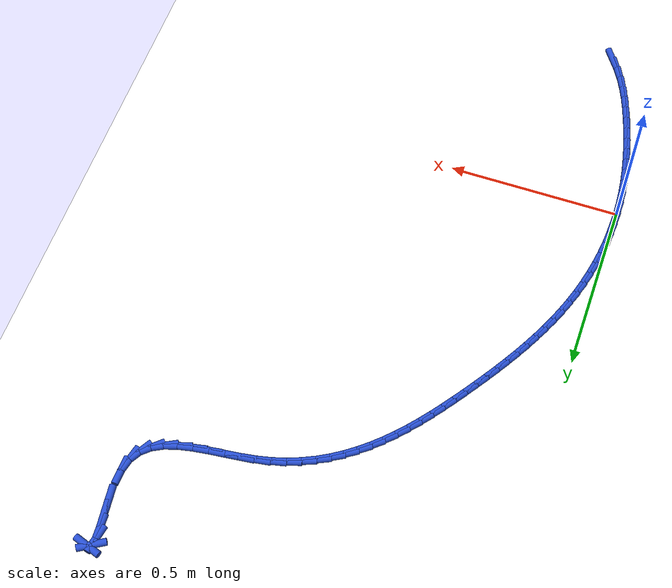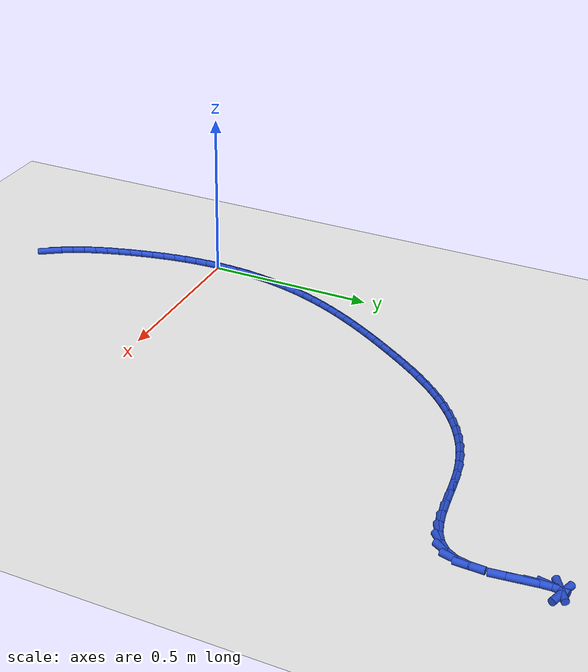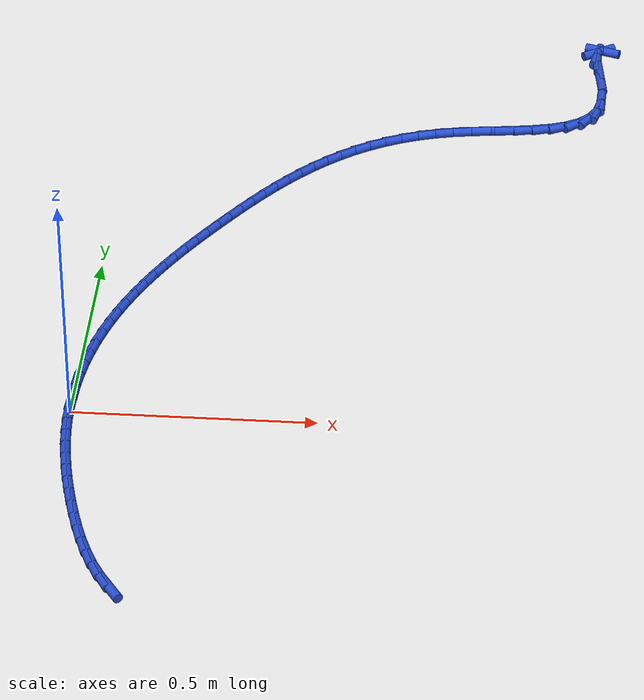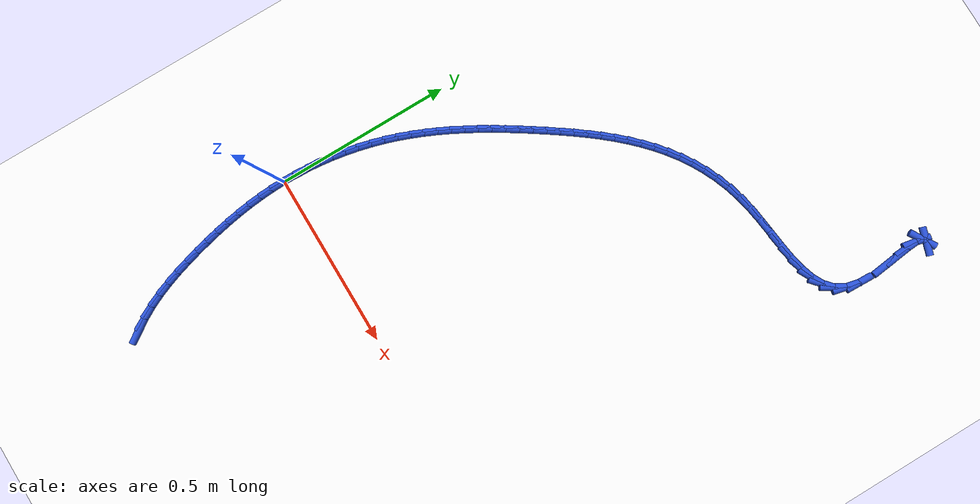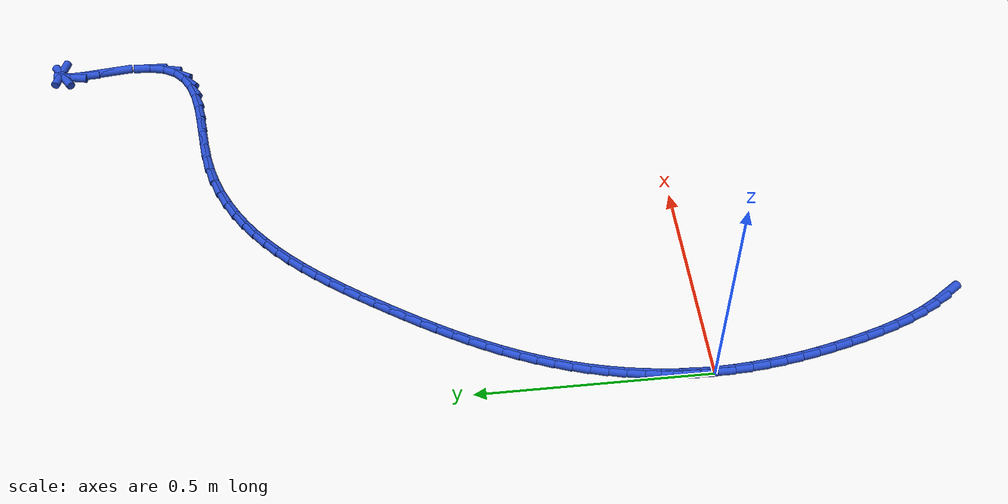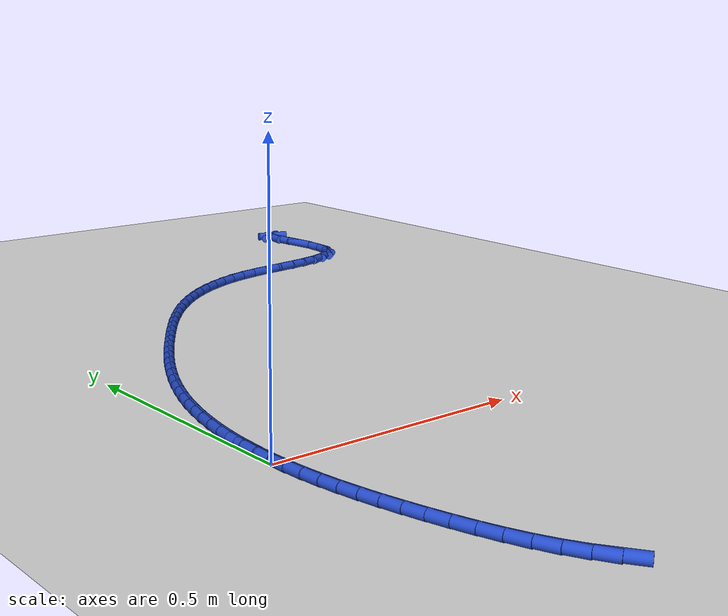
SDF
<sdf version="1.6">
 <world name="default">
  <model name="ground_plane">
   <static>1</static>
   <link name="link">
    <collision name="collision">
     <geometry><plane><normal>0 0 1</normal><size>100 100</size></plane></geometry>
     <surface><friction><ode><mu>100</mu><mu2>50</mu2></ode></friction></surface>
    </collision>
    <visual name="visual">
     <cast_shadows>0</cast_shadows>
     <geometry><plane><normal>0 0 1</normal><size>100 100</size></plane></geometry>
     <material>
      <script><uri>file://media/materials/scripts/gazebo.material</uri><name>Gazebo/WhiteGlow</name></script>
     </material>
    </visual>
   </link>
  </model>
  <model name="line">
   <link name="link_0">
    <pose>-1.734723475976807e-18 6.245004513516506e-17 0.01 0 1.57 1.5594142094917165</pose>
    <collision name="collision">
     <geometry><cylinder><radius>0.01</radius><length>0.08</length></cylinder></geometry>
    </collision>
    <visual name="visual">
     <material>
      <script><name>Gazebo/Blue</name><uri>file://media/materials/scripts/gazebo.material</uri></script>
     </material>
     <geometry><cylinder><radius>0.01</radius><length>0.08</length></cylinder></geometry>
    </visual>
   </link>
   <link name="link_1">
    <pose>0.00041959633002896753 0.03686293145337743 0.01 0 1.57 1.5197614206529997</pose>
    <collision name="collision">
     <geometry><cylinder><radius>0.01</radius><length>0.08</length></cylinder></geometry>
    </collision>
    <visual name="visual">
     <material>
      <script><name>Gazebo/Blue</name><uri>file://media/materials/scripts/gazebo.material</uri></script>
     </material>
     <geometry><cylinder><radius>0.01</radius><length>0.08</length></cylinder></geometry>
    </visual>
   </link>
   <link name="link_2">
    <pose>0.0023075632535122246 0.07382444804384612 0.01 0 1.57 1.4806341923794002</pose>
    <collision name="collision">
     <geometry><cylinder><radius>0.01</radius><length>0.08</length></cylinder></geometry>
    </collision>
    <visual name="visual">
     <material>
      <script><name>Gazebo/Blue</name><uri>file://media/materials/scripts/gazebo.material</uri></script>
     </material>
     <geometry><cylinder><radius>0.01</radius><length>0.08</length></cylinder></geometry>
    </visual>
   </link>
   <link name="link_3">
    <pose>0.005649455353335342 0.11078931762957243 0.01 0 1.57 1.4418444868212625</pose>
    <collision name="collision">
     <geometry><cylinder><radius>0.01</radius><length>0.08</length></cylinder></geometry>
    </collision>
    <visual name="visual">
     <material>
      <script><name>Gazebo/Blue</name><uri>file://media/materials/scripts/gazebo.material</uri></script>
     </material>
     <geometry><cylinder><radius>0.01</radius><length>0.08</length></cylinder></geometry>
    </visual>
   </link>
   <link name="link_4">
    <pose>0.010430827212383897 0.14766230806872271 0.01 0 1.57 1.40320618219238</pose>
    <collision name="collision">
     <geometry><cylinder><radius>0.01</radius><length>0.08</length></cylinder></geometry>
    </collision>
    <visual name="visual">
     <material>
      <script><name>Gazebo/Blue</name><uri>file://media/materials/scripts/gazebo.material</uri></script>
     </material>
     <geometry><cylinder><radius>0.01</radius><length>0.08</length></cylinder></geometry>
    </visual>
   </link>
   <link name="link_5">
    <pose>0.016637233413543475 0.18434818721946336 0.01 0 1.57 1.3645342668743343</pose>
    <collision name="collision">
     <geometry><cylinder><radius>0.01</radius><length>0.08</length></cylinder></geometry>
    </collision>
    <visual name="visual">
     <material>
      <script><name>Gazebo/Blue</name><uri>file://media/materials/scripts/gazebo.material</uri></script>
     </material>
     <geometry><cylinder><radius>0.01</radius><length>0.08</length></cylinder></geometry>
    </visual>
   </link>
   <link name="link_6">
    <pose>0.02425422853969965 0.2207517229399607 0.01 0 1.57 1.3256439769377975</pose>
    <collision name="collision">
     <geometry><cylinder><radius>0.01</radius><length>0.08</length></cylinder></geometry>
    </collision>
    <visual name="visual">
     <material>
      <script><name>Gazebo/Blue</name><uri>file://media/materials/scripts/gazebo.material</uri></script>
     </material>
     <geometry><cylinder><radius>0.01</radius><length>0.08</length></cylinder></geometry>
    </visual>
   </link>
   <link name="link_7">
    <pose>0.033267367173738 0.25677768308838117 0.01 0 1.57 1.2863499621935641</pose>
    <collision name="collision">
     <geometry><cylinder><radius>0.01</radius><length>0.08</length></cylinder></geometry>
    </collision>
    <visual name="visual">
     <material>
      <script><name>Gazebo/Blue</name><uri>file://media/materials/scripts/gazebo.material</uri></script>
     </material>
     <geometry><cylinder><radius>0.01</radius><length>0.08</length></cylinder></geometry>
    </visual>
   </link>
   <link name="link_8">
    <pose>0.04366220389854408 0.29233083552289085 0.01 0 1.57 1.2468676575764424</pose>
    <collision name="collision">
     <geometry><cylinder><radius>0.01</radius><length>0.08</length></cylinder></geometry>
    </collision>
    <visual name="visual">
     <material>
      <script><name>Gazebo/Blue</name><uri>file://media/materials/scripts/gazebo.material</uri></script>
     </material>
     <geometry><cylinder><radius>0.01</radius><length>0.08</length></cylinder></geometry>
    </visual>
   </link>
   <link name="link_9">
    <pose>0.055414555991797405 0.327333573481135 0.01 0 1.57 1.2091093961100625</pose>
    <collision name="collision">
     <geometry><cylinder><radius>0.01</radius><length>0.08</length></cylinder></geometry>
    </collision>
    <visual name="visual">
     <material>
      <script><name>Gazebo/Blue</name><uri>file://media/materials/scripts/gazebo.material</uri></script>
     </material>
     <geometry><cylinder><radius>0.01</radius><length>0.08</length></cylinder></geometry>
    </visual>
   </link>
   <link name="link_10">
    <pose>0.06845234348073441 0.36179498843986807 0.01 0 1.57 1.1737942052509123</pose>
    <collision name="collision">
     <geometry><cylinder><radius>0.01</radius><length>0.08</length></cylinder></geometry>
    </collision>
    <visual name="visual">
     <material>
      <script><name>Gazebo/Blue</name><uri>file://media/materials/scripts/gazebo.material</uri></script>
     </material>
     <geometry><cylinder><radius>0.01</radius><length>0.08</length></cylinder></geometry>
    </visual>
   </link>
   <link name="link_11">
    <pose>0.0826887837965743 0.3957507848687246 0.01 0 1.57 1.1410190597035177</pose>
    <collision name="collision">
     <geometry><cylinder><radius>0.01</radius><length>0.08</length></cylinder></geometry>
    </collision>
    <visual name="visual">
     <material>
      <script><name>Gazebo/Blue</name><uri>file://media/materials/scripts/gazebo.material</uri></script>
     </material>
     <geometry><cylinder><radius>0.01</radius><length>0.08</length></cylinder></geometry>
    </visual>
   </link>
   <link name="link_12">
    <pose>0.0980370904534148 0.42923667432767404 0.01 0 1.57 1.110845754170046</pose>
    <collision name="collision">
     <geometry><cylinder><radius>0.01</radius><length>0.08</length></cylinder></geometry>
    </collision>
    <visual name="visual">
     <material>
      <script><name>Gazebo/Blue</name><uri>file://media/materials/scripts/gazebo.material</uri></script>
     </material>
     <geometry><cylinder><radius>0.01</radius><length>0.08</length></cylinder></geometry>
    </visual>
   </link>
   <link name="link_13">
    <pose>0.11441047696535372 0.4622883683766858 0.01 0 1.57 1.083306772269377</pose>
    <collision name="collision">
     <geometry><cylinder><radius>0.01</radius><length>0.08</length></cylinder></geometry>
    </collision>
    <visual name="visual">
     <material>
      <script><name>Gazebo/Blue</name><uri>file://media/materials/scripts/gazebo.material</uri></script>
     </material>
     <geometry><cylinder><radius>0.01</radius><length>0.08</length></cylinder></geometry>
    </visual>
   </link>
   <link name="link_14">
    <pose>0.13172215684648883 0.4949415785757296 0.01 0 1.57 1.0584112083198152</pose>
    <collision name="collision">
     <geometry><cylinder><radius>0.01</radius><length>0.08</length></cylinder></geometry>
    </collision>
    <visual name="visual">
     <material>
      <script><name>Gazebo/Blue</name><uri>file://media/materials/scripts/gazebo.material</uri></script>
     </material>
     <geometry><cylinder><radius>0.01</radius><length>0.08</length></cylinder></geometry>
    </visual>
   </link>
   <link name="link_15">
    <pose>0.14988534361091774 0.5272320164847746 0.01 0 1.57 1.0361505030005373</pose>
    <collision name="collision">
     <geometry><cylinder><radius>0.01</radius><length>0.08</length></cylinder></geometry>
    </collision>
    <visual name="visual">
     <material>
      <script><name>Gazebo/Blue</name><uri>file://media/materials/scripts/gazebo.material</uri></script>
     </material>
     <geometry><cylinder><radius>0.01</radius><length>0.08</length></cylinder></geometry>
    </visual>
   </link>
   <link name="link_16">
    <pose>0.1688132507727383 0.5591953936637903 0.01 0 1.57 1.0165037237975427</pose>
    <collision name="collision">
     <geometry><cylinder><radius>0.01</radius><length>0.08</length></cylinder></geometry>
    </collision>
    <visual name="visual">
     <material>
      <script><name>Gazebo/Blue</name><uri>file://media/materials/scripts/gazebo.material</uri></script>
     </material>
     <geometry><cylinder><radius>0.01</radius><length>0.08</length></cylinder></geometry>
    </visual>
   </link>
   <link name="link_17">
    <pose>0.18841909184604821 0.5908674216727464 0.01 0 1.57 0.9994422360289478</pose>
    <collision name="collision">
     <geometry><cylinder><radius>0.01</radius><length>0.08</length></cylinder></geometry>
    </collision>
    <visual name="visual">
     <material>
      <script><name>Gazebo/Blue</name><uri>file://media/materials/scripts/gazebo.material</uri></script>
     </material>
     <geometry><cylinder><radius>0.01</radius><length>0.08</length></cylinder></geometry>
    </visual>
   </link>
   <link name="link_18">
    <pose>0.2086160803449452 0.6222838120716119 0.01 0 1.57 0.9849337000167219</pose>
    <collision name="collision">
     <geometry><cylinder><radius>0.01</radius><length>0.08</length></cylinder></geometry>
    </collision>
    <visual name="visual">
     <material>
      <script><name>Gazebo/Blue</name><uri>file://media/materials/scripts/gazebo.material</uri></script>
     </material>
     <geometry><cylinder><radius>0.01</radius><length>0.08</length></cylinder></geometry>
    </visual>
   </link>
   <link name="link_19">
    <pose>0.229317429783527 0.6534802764203566 0.01 0 1.57 0.9729401917821159</pose>
    <collision name="collision">
     <geometry><cylinder><radius>0.01</radius><length>0.08</length></cylinder></geometry>
    </collision>
    <visual name="visual">
     <material>
      <script><name>Gazebo/Blue</name><uri>file://media/materials/scripts/gazebo.material</uri></script>
     </material>
     <geometry><cylinder><radius>0.01</radius><length>0.08</length></cylinder></geometry>
    </visual>
   </link>
   <link name="link_20">
    <pose>0.2504364964700212 0.6844923892473219 0.01 0 1.57 0.961520134958428</pose>
    <collision name="collision">
     <geometry><cylinder><radius>0.01</radius><length>0.08</length></cylinder></geometry>
    </collision>
    <visual name="visual">
     <material>
      <script><name>Gazebo/Blue</name><uri>file://media/materials/scripts/gazebo.material</uri></script>
     </material>
     <geometry><cylinder><radius>0.01</radius><length>0.08</length></cylinder></geometry>
    </visual>
   </link>
   <link name="link_21">
    <pose>0.2719390974156577 0.7153053814459571 0.01 0 1.57 0.9458832486209974</pose>
    <collision name="collision">
     <geometry><cylinder><radius>0.01</radius><length>0.08</length></cylinder></geometry>
    </collision>
    <visual name="visual">
     <material>
      <script><name>Gazebo/Blue</name><uri>file://media/materials/scripts/gazebo.material</uri></script>
     </material>
     <geometry><cylinder><radius>0.01</radius><length>0.08</length></cylinder></geometry>
    </visual>
   </link>
   <link name="link_22">
    <pose>0.2939215157018397 0.7457792828386856 0.01 0 1.57 0.9252342550421012</pose>
    <collision name="collision">
     <geometry><cylinder><radius>0.01</radius><length>0.08</length></cylinder></geometry>
    </collision>
    <visual name="visual">
     <material>
      <script><name>Gazebo/Blue</name><uri>file://media/materials/scripts/gazebo.material</uri></script>
     </material>
     <geometry><cylinder><radius>0.01</radius><length>0.08</length></cylinder></geometry>
    </visual>
   </link>
   <link name="link_23">
    <pose>0.31649997388245926 0.7757549884391035 0.01 0 1.57 0.8994755979723202</pose>
    <collision name="collision">
     <geometry><cylinder><radius>0.01</radius><length>0.08</length></cylinder></geometry>
    </collision>
    <visual name="visual">
     <material>
      <script><name>Gazebo/Blue</name><uri>file://media/materials/scripts/gazebo.material</uri></script>
     </material>
     <geometry><cylinder><radius>0.01</radius><length>0.08</length></cylinder></geometry>
    </visual>
   </link>
   <link name="link_24">
    <pose>0.3397906945114086 0.8050733932608068 0.01 0 1.57 0.8684958564985839</pose>
    <collision name="collision">
     <geometry><cylinder><radius>0.01</radius><length>0.08</length></cylinder></geometry>
    </collision>
    <visual name="visual">
     <material>
      <script><name>Gazebo/Blue</name><uri>file://media/materials/scripts/gazebo.material</uri></script>
     </material>
     <geometry><cylinder><radius>0.01</radius><length>0.08</length></cylinder></geometry>
    </visual>
   </link>
   <link name="link_25">
    <pose>0.36390990014257946 0.8335753923173913 0.01 0 1.57 0.8321895468190854</pose>
    <collision name="collision">
     <geometry><cylinder><radius>0.01</radius><length>0.08</length></cylinder></geometry>
    </collision>
    <visual name="visual">
     <material>
      <script><name>Gazebo/Blue</name><uri>file://media/materials/scripts/gazebo.material</uri></script>
     </material>
     <geometry><cylinder><radius>0.01</radius><length>0.08</length></cylinder></geometry>
    </visual>
   </link>
   <link name="link_26">
    <pose>0.3889738133298642 0.8611018806224535 0.01 0 1.57 0.7904827724453364</pose>
    <collision name="collision">
     <geometry><cylinder><radius>0.01</radius><length>0.08</length></cylinder></geometry>
    </collision>
    <visual name="visual">
     <material>
      <script><name>Gazebo/Blue</name><uri>file://media/materials/scripts/gazebo.material</uri></script>
     </material>
     <geometry><cylinder><radius>0.01</radius><length>0.08</length></cylinder></geometry>
    </visual>
   </link>
   <link name="link_27">
    <pose>0.41509865662715445 0.8874937531895888 0.01 0 1.57 0.7433649602911423</pose>
    <collision name="collision">
     <geometry><cylinder><radius>0.01</radius><length>0.08</length></cylinder></geometry>
    </collision>
    <visual name="visual">
     <material>
      <script><name>Gazebo/Blue</name><uri>file://media/materials/scripts/gazebo.material</uri></script>
     </material>
     <geometry><cylinder><radius>0.01</radius><length>0.08</length></cylinder></geometry>
    </visual>
   </link>
   <link name="link_28">
    <pose>0.44240065258834255 0.9125919050323932 0.01 0 1.57 0.6909256533400588</pose>
    <collision name="collision">
     <geometry><cylinder><radius>0.01</radius><length>0.08</length></cylinder></geometry>
    </collision>
    <visual name="visual">
     <material>
      <script><name>Gazebo/Blue</name><uri>file://media/materials/scripts/gazebo.material</uri></script>
     </material>
     <geometry><cylinder><radius>0.01</radius><length>0.08</length></cylinder></geometry>
    </visual>
   </link>
   <link name="link_29">
    <pose>0.47099602376732036 0.9362372311644629 0.01 0 1.57 0.6333933266414129</pose>
    <collision name="collision">
     <geometry><cylinder><radius>0.01</radius><length>0.08</length></cylinder></geometry>
    </collision>
    <visual name="visual">
     <material>
      <script><name>Gazebo/Blue</name><uri>file://media/materials/scripts/gazebo.material</uri></script>
     </material>
     <geometry><cylinder><radius>0.01</radius><length>0.08</length></cylinder></geometry>
    </visual>
   </link>
   <link name="link_30">
    <pose>0.50100099271798 0.9582706265993939 0.01 0 1.57 0.5711706503171893</pose>
    <collision name="collision">
     <geometry><cylinder><radius>0.01</radius><length>0.08</length></cylinder></geometry>
    </collision>
    <visual name="visual">
     <material>
      <script><name>Gazebo/Blue</name><uri>file://media/materials/scripts/gazebo.material</uri></script>
     </material>
     <geometry><cylinder><radius>0.01</radius><length>0.08</length></cylinder></geometry>
    </visual>
   </link>
   <link name="link_31">
    <pose>0.5325317819942132 0.9785329863507818 0.01 0 1.57 0.5048582418891413</pose>
    <collision name="collision">
     <geometry><cylinder><radius>0.01</radius><length>0.08</length></cylinder></geometry>
    </collision>
    <visual name="visual">
     <material>
      <script><name>Gazebo/Blue</name><uri>file://media/materials/scripts/gazebo.material</uri></script>
     </material>
     <geometry><cylinder><radius>0.01</radius><length>0.08</length></cylinder></geometry>
    </visual>
   </link>
   <link name="link_32">
    <pose>0.5657046141499125 0.996865205432223 0.01 0 1.57 0.43525797994208</pose>
    <collision name="collision">
     <geometry><cylinder><radius>0.01</radius><length>0.08</length></cylinder></geometry>
    </collision>
    <visual name="visual">
     <material>
      <script><name>Gazebo/Blue</name><uri>file://media/materials/scripts/gazebo.material</uri></script>
     </material>
     <geometry><cylinder><radius>0.01</radius><length>0.08</length></cylinder></geometry>
    </visual>
   </link>
   <link name="link_33">
    <pose>0.6006357117389699 1.0131081788573135 0.01 0 1.57 0.36334880359344923</pose>
    <collision name="collision">
     <geometry><cylinder><radius>0.01</radius><length>0.08</length></cylinder></geometry>
    </collision>
    <visual name="visual">
     <material>
      <script><name>Gazebo/Blue</name><uri>file://media/materials/scripts/gazebo.material</uri></script>
     </material>
     <geometry><cylinder><radius>0.01</radius><length>0.08</length></cylinder></geometry>
    </visual>
   </link>
   <link name="link_34">
    <pose>0.6374412973152767 1.0271028016396488 0.01 0 1.57 0.2902332632933607</pose>
    <collision name="collision">
     <geometry><cylinder><radius>0.01</radius><length>0.08</length></cylinder></geometry>
    </collision>
    <visual name="visual">
     <material>
      <script><name>Gazebo/Blue</name><uri>file://media/materials/scripts/gazebo.material</uri></script>
     </material>
     <geometry><cylinder><radius>0.01</radius><length>0.08</length></cylinder></geometry>
    </visual>
   </link>
   <link name="link_35">
    <pose>0.6762375934327256 1.0386899687928253 0.01 0 1.57 0.2170793369445838</pose>
    <collision name="collision">
     <geometry><cylinder><radius>0.01</radius><length>0.08</length></cylinder></geometry>
    </collision>
    <visual name="visual">
     <material>
      <script><name>Gazebo/Blue</name><uri>file://media/materials/scripts/gazebo.material</uri></script>
     </material>
     <geometry><cylinder><radius>0.01</radius><length>0.08</length></cylinder></geometry>
    </visual>
   </link>
   <link name="link_36">
    <pose>0.7171401828552437 1.0477112272027955 0.01 0 1.57 0.15352552423355653</pose>
    <collision name="collision">
     <geometry><cylinder><radius>0.01</radius><length>0.08</length></cylinder></geometry>
    </collision>
    <visual name="visual">
     <material>
      <script><name>Gazebo/Blue</name><uri>file://media/materials/scripts/gazebo.material</uri></script>
     </material>
     <geometry><cylinder><radius>0.01</radius><length>0.08</length></cylinder></geometry>
    </visual>
   </link>
   <link name="link_37">
    <pose>0.7599440002487562 1.0543348272722584 0.01 0 1.57 0.11966423342751442</pose>
    <collision name="collision">
     <geometry><cylinder><radius>0.01</radius><length>0.08</length></cylinder></geometry>
    </collision>
    <visual name="visual">
     <material>
      <script><name>Gazebo/Blue</name><uri>file://media/materials/scripts/gazebo.material</uri></script>
     </material>
     <geometry><cylinder><radius>0.01</radius><length>0.08</length></cylinder></geometry>
    </visual>
   </link>
   <link name="link_38">
    <pose>0.8036043631385684 1.0595844926603228 0.01 0 1.57 0.11572813520731863</pose>
    <collision name="collision">
     <geometry><cylinder><radius>0.01</radius><length>0.08</length></cylinder></geometry>
    </collision>
    <visual name="visual">
     <material>
      <script><name>Gazebo/Blue</name><uri>file://media/materials/scripts/gazebo.material</uri></script>
     </material>
     <geometry><cylinder><radius>0.01</radius><length>0.08</length></cylinder></geometry>
    </visual>
   </link>
   <link name="link_39">
    <pose>0.846940846189356 1.064622253381936 0.01 0 1.57 0.14217490254160253</pose>
    <collision name="collision">
     <geometry><cylinder><radius>0.01</radius><length>0.08</length></cylinder></geometry>
    </collision>
    <visual name="visual">
     <material>
      <script><name>Gazebo/Blue</name><uri>file://media/materials/scripts/gazebo.material</uri></script>
     </material>
     <geometry><cylinder><radius>0.01</radius><length>0.08</length></cylinder></geometry>
    </visual>
   </link>
   <link name="link_40">
    <pose>0.8887730240657946 1.0706101394520446 0.01 0 1.57 0.20403193153452104</pose>
    <collision name="collision">
     <geometry><cylinder><radius>0.01</radius><length>0.08</length></cylinder></geometry>
    </collision>
    <visual name="visual">
     <material>
      <script><name>Gazebo/Blue</name><uri>file://media/materials/scripts/gazebo.material</uri></script>
     </material>
     <geometry><cylinder><radius>0.01</radius><length>0.08</length></cylinder></geometry>
    </visual>
   </link>
   <link name="link_41">
    <pose>0.9279204714325598 1.0787101808855946 0.01 0 1.57 0.31185836564098296</pose>
    <collision name="collision">
     <geometry><cylinder><radius>0.01</radius><length>0.08</length></cylinder></geometry>
    </collision>
    <visual name="visual">
     <material>
      <script><name>Gazebo/Blue</name><uri>file://media/materials/scripts/gazebo.material</uri></script>
     </material>
     <geometry><cylinder><radius>0.01</radius><length>0.08</length></cylinder></geometry>
    </visual>
   </link>
   <link name="link_42">
    <pose>0.9632027629543278 1.0900844076975333 0.01 0 1.57 0.4817906622888758</pose>
    <collision name="collision">
     <geometry><cylinder><radius>0.01</radius><length>0.08</length></cylinder></geometry>
    </collision>
    <visual name="visual">
     <material>
      <script><name>Gazebo/Blue</name><uri>file://media/materials/scripts/gazebo.material</uri></script>
     </material>
     <geometry><cylinder><radius>0.01</radius><length>0.08</length></cylinder></geometry>
    </visual>
   </link>
   <link name="link_43">
    <pose>0.9934394732957734 1.1058948499028072 0.01 0 1.57 0.7281720508403067</pose>
    <collision name="collision">
     <geometry><cylinder><radius>0.01</radius><length>0.08</length></cylinder></geometry>
    </collision>
    <visual name="visual">
     <material>
      <script><name>Gazebo/Blue</name><uri>file://media/materials/scripts/gazebo.material</uri></script>
     </material>
     <geometry><cylinder><radius>0.01</radius><length>0.08</length></cylinder></geometry>
    </visual>
   </link>
   <link name="link_44">
    <pose>1.017450177121573 1.127303537516363 0.01 0 1.57 1.0381682753477155</pose>
    <collision name="collision">
     <geometry><cylinder><radius>0.01</radius><length>0.08</length></cylinder></geometry>
    </collision>
    <visual name="visual">
     <material>
      <script><name>Gazebo/Blue</name><uri>file://media/materials/scripts/gazebo.material</uri></script>
     </material>
     <geometry><cylinder><radius>0.01</radius><length>0.08</length></cylinder></geometry>
    </visual>
   </link>
   <link name="link_45">
    <pose>1.0340544490964019 1.155472500553147 0.01 0 1.57 1.3415848188188524</pose>
    <collision name="collision">
     <geometry><cylinder><radius>0.01</radius><length>0.08</length></cylinder></geometry>
    </collision>
    <visual name="visual">
     <material>
      <script><name>Gazebo/Blue</name><uri>file://media/materials/scripts/gazebo.material</uri></script>
     </material>
     <geometry><cylinder><radius>0.01</radius><length>0.08</length></cylinder></geometry>
    </visual>
   </link>
   <link name="link_46">
    <pose>1.0423836287068127 1.1911722797754847 0.01 0 1.57 1.5352115632065804</pose>
    <collision name="collision">
     <geometry><cylinder><radius>0.01</radius><length>0.08</length></cylinder></geometry>
    </collision>
    <visual name="visual">
     <material>
      <script><name>Gazebo/Blue</name><uri>file://media/materials/scripts/gazebo.material</uri></script>
     </material>
     <geometry><cylinder><radius>0.01</radius><length>0.08</length></cylinder></geometry>
    </visual>
   </link>
   <link name="link_48">
    <pose>1.0408703503264782 1.275528166381375 0.01 0 1.57 -1.45225654680116</pose>
    <collision name="collision">
     <geometry><cylinder><radius>0.01</radius><length>0.08</length></cylinder></geometry>
    </collision>
    <visual name="visual">
     <material>
      <script><name>Gazebo/Blue</name><uri>file://media/materials/scripts/gazebo.material</uri></script>
     </material>
     <geometry><cylinder><radius>0.01</radius><length>0.08</length></cylinder></geometry>
    </visual>
   </link>
   <link name="link_49">
    <pose>1.035876981495017 1.3174546697589975 0.01 0 1.57 -1.4484628603315188</pose>
    <collision name="collision">
     <geometry><cylinder><radius>0.01</radius><length>0.08</length></cylinder></geometry>
    </collision>
    <visual name="visual">
     <material>
      <script><name>Gazebo/Blue</name><uri>file://media/materials/scripts/gazebo.material</uri></script>
     </material>
     <geometry><cylinder><radius>0.01</radius><length>0.08</length></cylinder></geometry>
    </visual>
   </link>
   <link name="link_50">
    <pose>1.0312948978494307 1.3547233195454786 0.01 0 1.57 -1.5112299644052511</pose>
    <collision name="collision">
     <geometry><cylinder><radius>0.01</radius><length>0.08</length></cylinder></geometry>
    </collision>
    <visual name="visual">
     <material>
      <script><name>Gazebo/Blue</name><uri>file://media/materials/scripts/gazebo.material</uri></script>
     </material>
     <geometry><cylinder><radius>0.01</radius><length>0.08</length></cylinder></geometry>
    </visual>
   </link>
   <link name="link_51">
    <pose>1.0295509280997723 1.3839664455101222 0.01 0 1.57 1.380746014200417</pose>
    <collision name="collision">
     <geometry><cylinder><radius>0.01</radius><length>0.08</length></cylinder></geometry>
    </collision>
    <visual name="visual">
     <material>
      <script><name>Gazebo/Blue</name><uri>file://media/materials/scripts/gazebo.material</uri></script>
     </material>
     <geometry><cylinder><radius>0.01</radius><length>0.08</length></cylinder></geometry>
    </visual>
   </link>
   <link name="link_52">
    <pose>1.0330054869559417 1.4019241454276252 0.01 0 1.57 0.5448765193451922</pose>
    <collision name="collision">
     <geometry><cylinder><radius>0.01</radius><length>0.08</length></cylinder></geometry>
    </collision>
    <visual name="visual">
     <material>
      <script><name>Gazebo/Blue</name><uri>file://media/materials/scripts/gazebo.material</uri></script>
     </material>
     <geometry><cylinder><radius>0.01</radius><length>0.08</length></cylinder></geometry>
    </visual>
   </link>
   <link name="link_53">
    <pose>1.0425550873327927 1.407711946593216 0.01 0 1.57 -0.31637296207430277</pose>
    <collision name="collision">
     <geometry><cylinder><radius>0.01</radius><length>0.08</length></cylinder></geometry>
    </collision>
    <visual name="visual">
     <material>
      <script><name>Gazebo/Blue</name><uri>file://media/materials/scripts/gazebo.material</uri></script>
     </material>
     <geometry><cylinder><radius>0.01</radius><length>0.08</length></cylinder></geometry>
    </visual>
   </link>
   <link name="link_195">
    <pose>0.1474079175611905 -0.5325419420575208 0.01 0 1.57 -0.9691982425172041</pose>
    <collision name="collision">
     <geometry><cylinder><radius>0.01</radius><length>0.08</length></cylinder></geometry>
    </collision>
    <visual name="visual">
     <material>
      <script><name>Gazebo/Blue</name><uri>file://media/materials/scripts/gazebo.material</uri></script>
     </material>
     <geometry><cylinder><radius>0.01</radius><length>0.08</length></cylinder></geometry>
    </visual>
   </link>
   <link name="link_196">
    <pose>0.12693540731680095 -0.5027197357793147 0.01 0 1.57 -1.0536697274858624</pose>
    <collision name="collision">
     <geometry><cylinder><radius>0.01</radius><length>0.08</length></cylinder></geometry>
    </collision>
    <visual name="visual">
     <material>
      <script><name>Gazebo/Blue</name><uri>file://media/materials/scripts/gazebo.material</uri></script>
     </material>
     <geometry><cylinder><radius>0.01</radius><length>0.08</length></cylinder></geometry>
    </visual>
   </link>
   <link name="link_197">
    <pose>0.10874048462994014 -0.47072881520706816 0.01 0 1.57 -1.1245724404221011</pose>
    <collision name="collision">
     <geometry><cylinder><radius>0.01</radius><length>0.08</length></cylinder></geometry>
    </collision>
    <visual name="visual">
     <material>
      <script><name>Gazebo/Blue</name><uri>file://media/materials/scripts/gazebo.material</uri></script>
     </material>
     <geometry><cylinder><radius>0.01</radius><length>0.08</length></cylinder></geometry>
    </visual>
   </link>
   <link name="link_198">
    <pose>0.09258941275342875 -0.4369686568396666 0.01 0 1.57 -1.183218472424323</pose>
    <collision name="collision">
     <geometry><cylinder><radius>0.01</radius><length>0.08</length></cylinder></geometry>
    </collision>
    <visual name="visual">
     <material>
      <script><name>Gazebo/Blue</name><uri>file://media/materials/scripts/gazebo.material</uri></script>
     </material>
     <geometry><cylinder><radius>0.01</radius><length>0.08</length></cylinder></geometry>
    </visual>
   </link>
   <link name="link_199">
    <pose>0.0782484549400881 -0.40183873717599633 0.01 0 1.57 -1.2309291116744379</pose>
    <collision name="collision">
     <geometry><cylinder><radius>0.01</radius><length>0.08</length></cylinder></geometry>
    </collision>
    <visual name="visual">
     <material>
      <script><name>Gazebo/Blue</name><uri>file://media/materials/scripts/gazebo.material</uri></script>
     </material>
     <geometry><cylinder><radius>0.01</radius><length>0.08</length></cylinder></geometry>
    </visual>
   </link>
   <link name="link_200">
    <pose>0.06548387444273945 -0.3657385327149437 0.01 0 1.57 -1.26884960955269</pose>
    <collision name="collision">
     <geometry><cylinder><radius>0.01</radius><length>0.08</length></cylinder></geometry>
    </collision>
    <visual name="visual">
     <material>
      <script><name>Gazebo/Blue</name><uri>file://media/materials/scripts/gazebo.material</uri></script>
     </material>
     <geometry><cylinder><radius>0.01</radius><length>0.08</length></cylinder></geometry>
    </visual>
   </link>
   <link name="link_201">
    <pose>0.05406193451420404 -0.3290675199553948 0.01 0 1.57 -1.2978592016823265</pose>
    <collision name="collision">
     <geometry><cylinder><radius>0.01</radius><length>0.08</length></cylinder></geometry>
    </collision>
    <visual name="visual">
     <material>
      <script><name>Gazebo/Blue</name><uri>file://media/materials/scripts/gazebo.material</uri></script>
     </material>
     <geometry><cylinder><radius>0.01</radius><length>0.08</length></cylinder></geometry>
    </visual>
   </link>
   <link name="link_202">
    <pose>0.043748915033667284 -0.2922251511179762 0.01 0 1.57 -1.3207199492396708</pose>
    <collision name="collision">
     <geometry><cylinder><radius>0.01</radius><length>0.08</length></cylinder></geometry>
    </collision>
    <visual name="visual">
     <material>
      <script><name>Gazebo/Blue</name><uri>file://media/materials/scripts/gazebo.material</uri></script>
     </material>
     <geometry><cylinder><radius>0.01</radius><length>0.08</length></cylinder></geometry>
    </visual>
   </link>
   <link name="link_203">
    <pose>0.03437350158191033 -0.2555197519602669 0.01 0 1.57 -1.3447872499643554</pose>
    <collision name="collision">
     <geometry><cylinder><radius>0.01</radius><length>0.08</length></cylinder></geometry>
    </collision>
    <visual name="visual">
     <material>
      <script><name>Gazebo/Blue</name><uri>file://media/materials/scripts/gazebo.material</uri></script>
     </material>
     <geometry><cylinder><radius>0.01</radius><length>0.08</length></cylinder></geometry>
    </visual>
   </link>
   <link name="link_204">
    <pose>0.025967681354945326 -0.2189627818213125 0.01 0 1.57 -1.3715177545970658</pose>
    <collision name="collision">
     <geometry><cylinder><radius>0.01</radius><length>0.08</length></cylinder></geometry>
    </collision>
    <visual name="visual">
     <material>
      <script><name>Gazebo/Blue</name><uri>file://media/materials/scripts/gazebo.material</uri></script>
     </material>
     <geometry><cylinder><radius>0.01</radius><length>0.08</length></cylinder></geometry>
    </visual>
   </link>
   <link name="link_205">
    <pose>0.01860477189359751 -0.18250534837287308 0.01 0 1.57 -1.400870836773456</pose>
    <collision name="collision">
     <geometry><cylinder><radius>0.01</radius><length>0.08</length></cylinder></geometry>
    </collision>
    <visual name="visual">
     <material>
      <script><name>Gazebo/Blue</name><uri>file://media/materials/scripts/gazebo.material</uri></script>
     </material>
     <geometry><cylinder><radius>0.01</radius><length>0.08</length></cylinder></geometry>
    </visual>
   </link>
   <link name="link_206">
    <pose>0.012358090738692129 -0.14609855928670856 0.01 0 1.57 -1.4327665838494124</pose>
    <collision name="collision">
     <geometry><cylinder><radius>0.01</radius><length>0.08</length></cylinder></geometry>
    </collision>
    <visual name="visual">
     <material>
      <script><name>Gazebo/Blue</name><uri>file://media/materials/scripts/gazebo.material</uri></script>
     </material>
     <geometry><cylinder><radius>0.01</radius><length>0.08</length></cylinder></geometry>
    </visual>
   </link>
   <link name="link_207">
    <pose>0.0073009554310544365 -0.10969352223457891 0.01 0 1.57 -1.4670807864997102</pose>
    <collision name="collision">
     <geometry><cylinder><radius>0.01</radius><length>0.08</length></cylinder></geometry>
    </collision>
    <visual name="visual">
     <material>
      <script><name>Gazebo/Blue</name><uri>file://media/materials/scripts/gazebo.material</uri></script>
     </material>
     <geometry><cylinder><radius>0.01</radius><length>0.08</length></cylinder></geometry>
    </visual>
   </link>
   <link name="link_208">
    <pose>0.0035066835115096858 -0.07324134488824428 0.01 0 1.57 -1.5036413355956117</pose>
    <collision name="collision">
     <geometry><cylinder><radius>0.01</radius><length>0.08</length></cylinder></geometry>
    </collision>
    <visual name="visual">
     <material>
      <script><name>Gazebo/Blue</name><uri>file://media/materials/scripts/gazebo.material</uri></script>
     </material>
     <geometry><cylinder><radius>0.01</radius><length>0.08</length></cylinder></geometry>
    </visual>
   </link>
   <link name="link_209">
    <pose>0.0010485925208830842 -0.03669313491946384 0.01 0 1.57 -1.5422267534015908</pose>
    <collision name="collision">
     <geometry><cylinder><radius>0.01</radius><length>0.08</length></cylinder></geometry>
    </collision>
    <visual name="visual">
     <material>
      <script><name>Gazebo/Blue</name><uri>file://media/materials/scripts/gazebo.material</uri></script>
     </material>
     <geometry><cylinder><radius>0.01</radius><length>0.08</length></cylinder></geometry>
    </visual>
   </link>
   <link name="link_210">
    <pose>6.071532165918825e-18 -1.1796119636642288e-16 0.01 0 1.57 1.559025133780985</pose>
    <collision name="collision">
     <geometry><cylinder><radius>0.01</radius><length>0.08</length></cylinder></geometry>
    </collision>
    <visual name="visual">
     <material>
      <script><name>Gazebo/Blue</name><uri>file://media/materials/scripts/gazebo.material</uri></script>
     </material>
     <geometry><cylinder><radius>0.01</radius><length>0.08</length></cylinder></geometry>
    </visual>
   </link>
   <link name="link_211">
    <pose>0.00043422348968558296 0.03688695219838939 0.01 0 1.57 1.5172420051082853</pose>
    <collision name="collision">
     <geometry><cylinder><radius>0.01</radius><length>0.08</length></cylinder></geometry>
    </collision>
    <visual name="visual">
     <material>
      <script><name>Gazebo/Blue</name><uri>file://media/materials/scripts/gazebo.material</uri></script>
     </material>
     <geometry><cylinder><radius>0.01</radius><length>0.08</length></cylinder></geometry>
    </visual>
   </link>
   <link name="link_212">
    <pose>0.0024245805307652277 0.07401661400394552 0.01 0 1.57 1.5380507885188301</pose>
    <collision name="collision">
     <geometry><cylinder><radius>0.01</radius><length>0.08</length></cylinder></geometry>
    </collision>
    <visual name="visual">
     <material>
      <script><name>Gazebo/Blue</name><uri>file://media/materials/scripts/gazebo.material</uri></script>
     </material>
     <geometry><cylinder><radius>0.01</radius><length>0.08</length></cylinder></geometry>
    </visual>
   </link>
  </model>
 </world>
</sdf>
